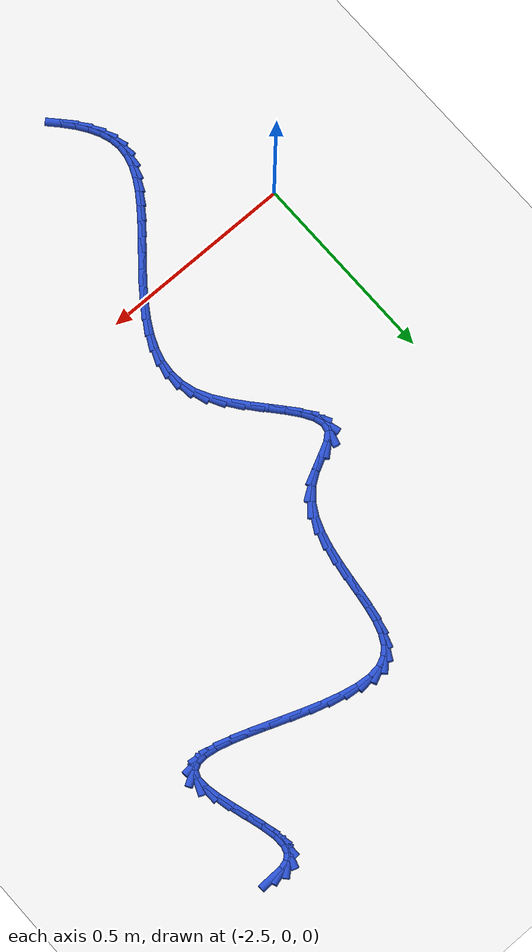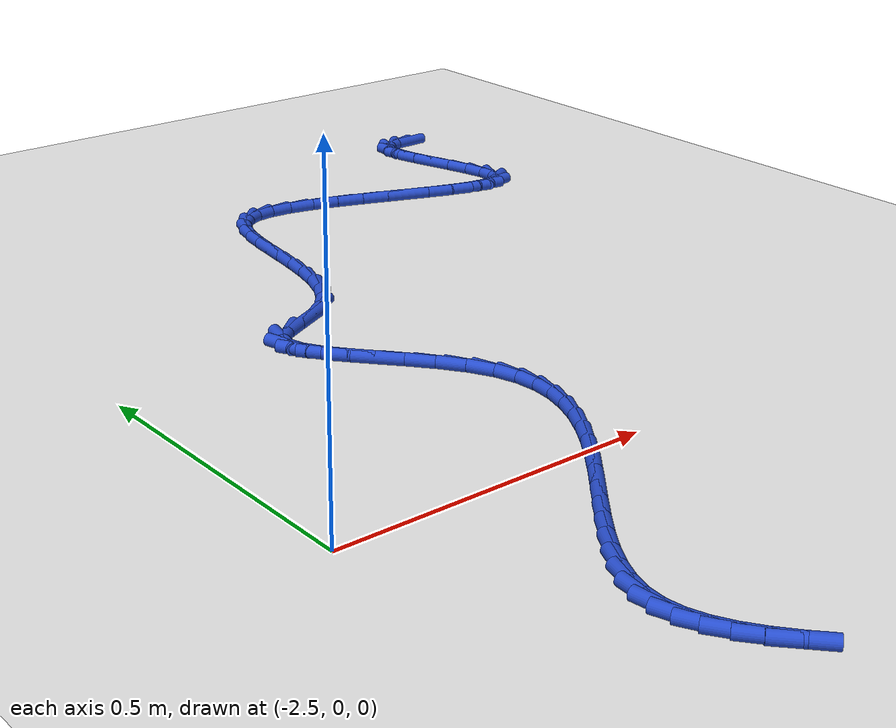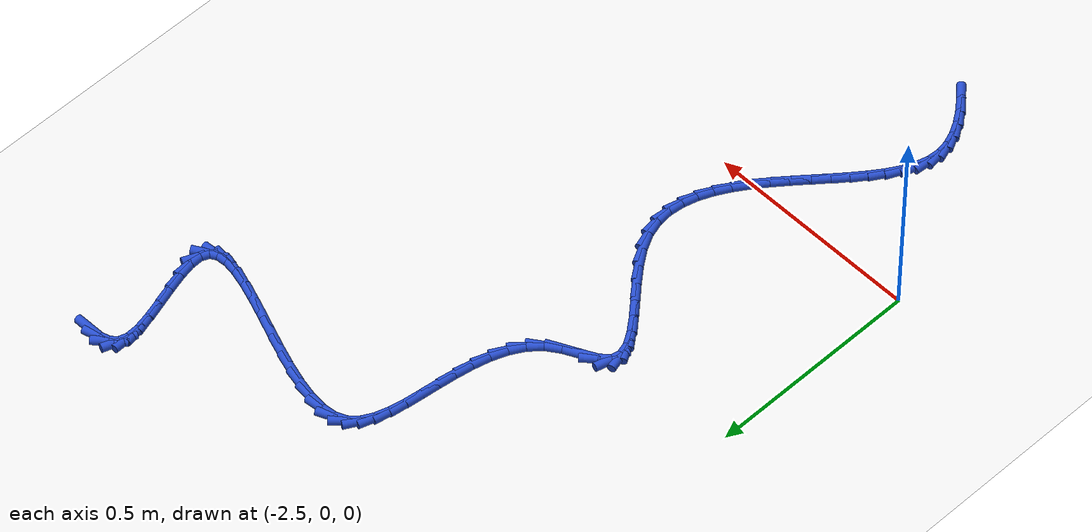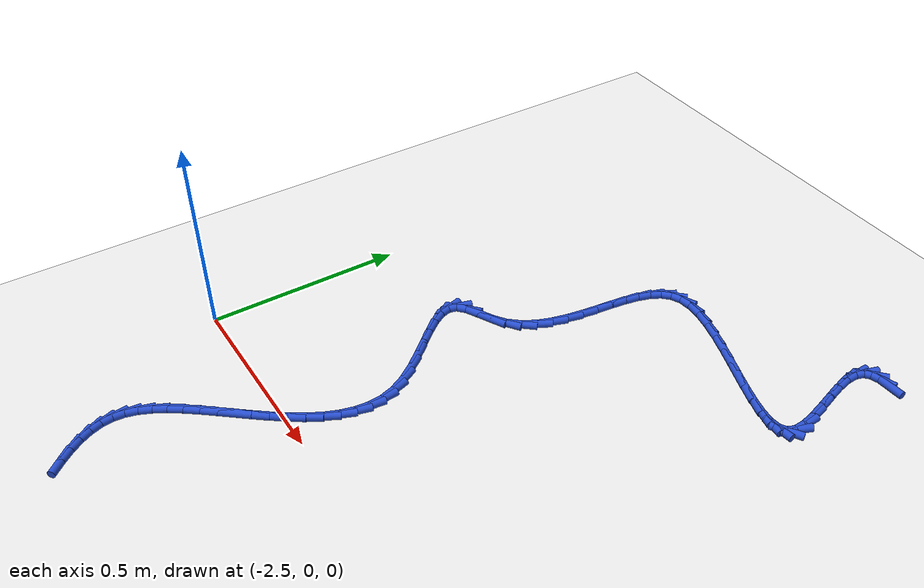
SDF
<sdf version="1.6">
 <world name="default">
  <model name="ground_plane">
   <static>1</static>
   <link name="link">
    <collision name="collision">
     <geometry><plane><normal>0 0 1</normal><size>100 100</size></plane></geometry>
     <surface><friction><ode><mu>100</mu><mu2>50</mu2></ode></friction></surface>
    </collision>
    <visual name="visual">
     <cast_shadows>0</cast_shadows>
     <geometry><plane><normal>0 0 1</normal><size>100 100</size></plane></geometry>
     <material>
      <script><uri>file://media/materials/scripts/gazebo.material</uri><name>Gazebo/WhiteGlow</name></script>
     </material>
    </visual>
   </link>
  </model>
  <model name="line">
   <link name="link_58">
    <pose>-1.4164016292035744 1.232261202519461 0.01 0 1.57 0.023516753938039918</pose>
    <collision name="collision">
     <geometry><cylinder><radius>0.01</radius><length>0.08</length></cylinder></geometry>
    </collision>
    <visual name="visual">
     <material>
      <script><name>Gazebo/Blue</name><uri>file://media/materials/scripts/gazebo.material</uri></script>
     </material>
     <geometry><cylinder><radius>0.01</radius><length>0.08</length></cylinder></geometry>
    </visual>
   </link>
   <link name="link_59">
    <pose>-1.4429171611533131 1.2316375283030356 0.01 0 1.57 0.2956675362459462</pose>
    <collision name="collision">
     <geometry><cylinder><radius>0.01</radius><length>0.08</length></cylinder></geometry>
    </collision>
    <visual name="visual">
     <material>
      <script><name>Gazebo/Blue</name><uri>file://media/materials/scripts/gazebo.material</uri></script>
     </material>
     <geometry><cylinder><radius>0.01</radius><length>0.08</length></cylinder></geometry>
    </visual>
   </link>
   <link name="link_60">
    <pose>-1.46348070411197 1.2253739648131716 0.01 0 1.57 0.7439243515767405</pose>
    <collision name="collision">
     <geometry><cylinder><radius>0.01</radius><length>0.08</length></cylinder></geometry>
    </collision>
    <visual name="visual">
     <material>
      <script><name>Gazebo/Blue</name><uri>file://media/materials/scripts/gazebo.material</uri></script>
     </material>
     <geometry><cylinder><radius>0.01</radius><length>0.08</length></cylinder></geometry>
    </visual>
   </link>
   <link name="link_61">
    <pose>-1.477401232021106 1.212562740660931 0.01 0 1.57 1.25657230305741</pose>
    <collision name="collision">
     <geometry><cylinder><radius>0.01</radius><length>0.08</length></cylinder></geometry>
    </collision>
    <visual name="visual">
     <material>
      <script><name>Gazebo/Blue</name><uri>file://media/materials/scripts/gazebo.material</uri></script>
     </material>
     <geometry><cylinder><radius>0.01</radius><length>0.08</length></cylinder></geometry>
    </visual>
   </link>
   <link name="link_62">
    <pose>-1.4839877188222823 1.1922960844573756 0.01 0 1.57 -1.5275428245213711</pose>
    <collision name="collision">
     <geometry><cylinder><radius>0.01</radius><length>0.08</length></cylinder></geometry>
    </collision>
    <visual name="visual">
     <material>
      <script><name>Gazebo/Blue</name><uri>file://media/materials/scripts/gazebo.material</uri></script>
     </material>
     <geometry><cylinder><radius>0.01</radius><length>0.08</length></cylinder></geometry>
    </visual>
   </link>
   <link name="link_63">
    <pose>-1.4827585938555519 1.1638970347296829 0.01 0 1.57 -1.3582465226467408</pose>
    <collision name="collision">
     <geometry><cylinder><radius>0.01</radius><length>0.08</length></cylinder></geometry>
    </collision>
    <visual name="visual">
     <material>
      <script><name>Gazebo/Blue</name><uri>file://media/materials/scripts/gazebo.material</uri></script>
     </material>
     <geometry><cylinder><radius>0.01</radius><length>0.08</length></cylinder></geometry>
    </visual>
   </link>
   <link name="link_64">
    <pose>-1.4751955533008918 1.1288520569584548 0.01 0 1.57 -1.2879365823768223</pose>
    <collision name="collision">
     <geometry><cylinder><radius>0.01</radius><length>0.08</length></cylinder></geometry>
    </collision>
    <visual name="visual">
     <material>
      <script><name>Gazebo/Blue</name><uri>file://media/materials/scripts/gazebo.material</uri></script>
     </material>
     <geometry><cylinder><radius>0.01</radius><length>0.08</length></cylinder></geometry>
    </visual>
   </link>
   <link name="link_65">
    <pose>-1.463853855143631 1.089830630822174 0.01 0 1.57 -1.268921595184706</pose>
    <collision name="collision">
     <geometry><cylinder><radius>0.01</radius><length>0.08</length></cylinder></geometry>
    </collision>
    <visual name="visual">
     <material>
      <script><name>Gazebo/Blue</name><uri>file://media/materials/scripts/gazebo.material</uri></script>
     </material>
     <geometry><cylinder><radius>0.01</radius><length>0.08</length></cylinder></geometry>
    </visual>
   </link>
   <link name="link_66">
    <pose>-1.4512996816436092 1.0495142740317704 0.01 0 1.57 -1.290652962087507</pose>
    <collision name="collision">
     <geometry><cylinder><radius>0.01</radius><length>0.08</length></cylinder></geometry>
    </collision>
    <visual name="visual">
     <material>
      <script><name>Gazebo/Blue</name><uri>file://media/materials/scripts/gazebo.material</uri></script>
     </material>
     <geometry><cylinder><radius>0.01</radius><length>0.08</length></cylinder></geometry>
    </visual>
   </link>
   <link name="link_67">
    <pose>-1.4400992150606642 1.0105845042981756 0.01 0 1.57 -1.364913546421629</pose>
    <collision name="collision">
     <geometry><cylinder><radius>0.01</radius><length>0.08</length></cylinder></geometry>
    </collision>
    <visual name="visual">
     <material>
      <script><name>Gazebo/Blue</name><uri>file://media/materials/scripts/gazebo.material</uri></script>
     </material>
     <geometry><cylinder><radius>0.01</radius><length>0.08</length></cylinder></geometry>
    </visual>
   </link>
   <link name="link_68">
    <pose>-1.4328186376546355 0.9757228393323184 0.01 0 1.57 -1.5425417261412266</pose>
    <collision name="collision">
     <geometry><cylinder><radius>0.01</radius><length>0.08</length></cylinder></geometry>
    </collision>
    <visual name="visual">
     <material>
      <script><name>Gazebo/Blue</name><uri>file://media/materials/scripts/gazebo.material</uri></script>
     </material>
     <geometry><cylinder><radius>0.01</radius><length>0.08</length></cylinder></geometry>
    </visual>
   </link>
   <link name="link_69">
    <pose>-1.4320241316853617 0.9476107968451305 0.01 0 1.57 1.172215041694238</pose>
    <collision name="collision">
     <geometry><cylinder><radius>0.01</radius><length>0.08</length></cylinder></geometry>
    </collision>
    <visual name="visual">
     <material>
      <script><name>Gazebo/Blue</name><uri>file://media/materials/scripts/gazebo.material</uri></script>
     </material>
     <geometry><cylinder><radius>0.01</radius><length>0.08</length></cylinder></geometry>
    </visual>
   </link>
   <link name="link_70">
    <pose>-1.4400125933685064 0.9286413212481096 0.01 0 1.57 0.5327663946959821</pose>
    <collision name="collision">
     <geometry><cylinder><radius>0.01</radius><length>0.08</length></cylinder></geometry>
    </collision>
    <visual name="visual">
     <material>
      <script><name>Gazebo/Blue</name><uri>file://media/materials/scripts/gazebo.material</uri></script>
     </material>
     <geometry><cylinder><radius>0.01</radius><length>0.08</length></cylinder></geometry>
    </visual>
   </link>
   <link name="link_71">
    <pose>-1.4567878037543889 0.918750000459337 0.01 0 1.57 0.08665400599394021</pose>
    <collision name="collision">
     <geometry><cylinder><radius>0.01</radius><length>0.08</length></cylinder></geometry>
    </collision>
    <visual name="visual">
     <material>
      <script><name>Gazebo/Blue</name><uri>file://media/materials/scripts/gazebo.material</uri></script>
     </material>
     <geometry><cylinder><radius>0.01</radius><length>0.08</length></cylinder></geometry>
    </visual>
   </link>
   <link name="link_72">
    <pose>-1.4811939728964756 0.9166297986674977 0.01 0 1.57 -0.13948151157193725</pose>
    <collision name="collision">
     <geometry><cylinder><radius>0.01</radius><length>0.08</length></cylinder></geometry>
    </collision>
    <visual name="visual">
     <material>
      <script><name>Gazebo/Blue</name><uri>file://media/materials/scripts/gazebo.material</uri></script>
     </material>
     <geometry><cylinder><radius>0.01</radius><length>0.08</length></cylinder></geometry>
    </visual>
   </link>
   <link name="link_73">
    <pose>-1.5120663408580208 0.9209640676074299 0.01 0 1.57 -0.25609961996633385</pose>
    <collision name="collision">
     <geometry><cylinder><radius>0.01</radius><length>0.08</length></cylinder></geometry>
    </collision>
    <visual name="visual">
     <material>
      <script><name>Gazebo/Blue</name><uri>file://media/materials/scripts/gazebo.material</uri></script>
     </material>
     <geometry><cylinder><radius>0.01</radius><length>0.08</length></cylinder></geometry>
    </visual>
   </link>
   <link name="link_74">
    <pose>-1.54824014770228 0.9304361590139714 0.01 0 1.57 -0.3185418497809267</pose>
    <collision name="collision">
     <geometry><cylinder><radius>0.01</radius><length>0.08</length></cylinder></geometry>
    </collision>
    <visual name="visual">
     <material>
      <script><name>Gazebo/Blue</name><uri>file://media/materials/scripts/gazebo.material</uri></script>
     </material>
     <geometry><cylinder><radius>0.01</radius><length>0.08</length></cylinder></geometry>
    </visual>
   </link>
   <link name="link_75">
    <pose>-1.5885506334925077 0.9437294246219607 0.01 0 1.57 -0.3499690201473072</pose>
    <collision name="collision">
     <geometry><cylinder><radius>0.01</radius><length>0.08</length></cylinder></geometry>
    </collision>
    <visual name="visual">
     <material>
      <script><name>Gazebo/Blue</name><uri>file://media/materials/scripts/gazebo.material</uri></script>
     </material>
     <geometry><cylinder><radius>0.01</radius><length>0.08</length></cylinder></geometry>
    </visual>
   </link>
   <link name="link_76">
    <pose>-1.6318330382919588 0.9595272161662364 0.01 0 1.57 -0.3602686088512366</pose>
    <collision name="collision">
     <geometry><cylinder><radius>0.01</radius><length>0.08</length></cylinder></geometry>
    </collision>
    <visual name="visual">
     <material>
      <script><name>Gazebo/Blue</name><uri>file://media/materials/scripts/gazebo.material</uri></script>
     </material>
     <geometry><cylinder><radius>0.01</radius><length>0.08</length></cylinder></geometry>
    </visual>
   </link>
   <link name="link_77">
    <pose>-1.6769226021638879 0.9765128853816357 0.01 0 1.57 -0.3531498080925451</pose>
    <collision name="collision">
     <geometry><cylinder><radius>0.01</radius><length>0.08</length></cylinder></geometry>
    </collision>
    <visual name="visual">
     <material>
      <script><name>Gazebo/Blue</name><uri>file://media/materials/scripts/gazebo.material</uri></script>
     </material>
     <geometry><cylinder><radius>0.01</radius><length>0.08</length></cylinder></geometry>
    </visual>
   </link>
   <link name="link_78">
    <pose>-1.7226545651715508 0.9933697840029982 0.01 0 1.57 -0.328535640530899</pose>
    <collision name="collision">
     <geometry><cylinder><radius>0.01</radius><length>0.08</length></cylinder></geometry>
    </collision>
    <visual name="visual">
     <material>
      <script><name>Gazebo/Blue</name><uri>file://media/materials/scripts/gazebo.material</uri></script>
     </material>
     <geometry><cylinder><radius>0.01</radius><length>0.08</length></cylinder></geometry>
    </visual>
   </link>
   <link name="link_79">
    <pose>-1.7678641673782005 1.0087812637651603 0.01 0 1.57 -0.28284849062185324</pose>
    <collision name="collision">
     <geometry><cylinder><radius>0.01</radius><length>0.08</length></cylinder></geometry>
    </collision>
    <visual name="visual">
     <material>
      <script><name>Gazebo/Blue</name><uri>file://media/materials/scripts/gazebo.material</uri></script>
     </material>
     <geometry><cylinder><radius>0.01</radius><length>0.08</length></cylinder></geometry>
    </visual>
   </link>
   <link name="link_80">
    <pose>-1.811386648847094 1.0214306764029621 0.01 0 1.57 -0.20769553215215708</pose>
    <collision name="collision">
     <geometry><cylinder><radius>0.01</radius><length>0.08</length></cylinder></geometry>
    </collision>
    <visual name="visual">
     <material>
      <script><name>Gazebo/Blue</name><uri>file://media/materials/scripts/gazebo.material</uri></script>
     </material>
     <geometry><cylinder><radius>0.01</radius><length>0.08</length></cylinder></geometry>
    </visual>
   </link>
   <link name="link_81">
    <pose>-1.8520572496414842 1.0300013736512403 0.01 0 1.57 -0.0864142859599788</pose>
    <collision name="collision">
     <geometry><cylinder><radius>0.01</radius><length>0.08</length></cylinder></geometry>
    </collision>
    <visual name="visual">
     <material>
      <script><name>Gazebo/Blue</name><uri>file://media/materials/scripts/gazebo.material</uri></script>
     </material>
     <geometry><cylinder><radius>0.01</radius><length>0.08</length></cylinder></geometry>
    </visual>
   </link>
   <link name="link_82">
    <pose>-1.8887112098246273 1.0331767072448341 0.01 0 1.57 0.11190393643992667</pose>
    <collision name="collision">
     <geometry><cylinder><radius>0.01</radius><length>0.08</length></cylinder></geometry>
    </collision>
    <visual name="visual">
     <material>
      <script><name>Gazebo/Blue</name><uri>file://media/materials/scripts/gazebo.material</uri></script>
     </material>
     <geometry><cylinder><radius>0.01</radius><length>0.08</length></cylinder></geometry>
    </visual>
   </link>
   <link name="link_83">
    <pose>-1.9201837694597772 1.029640028918581 0.01 0 1.57 0.4273528213781293</pose>
    <collision name="collision">
     <geometry><cylinder><radius>0.01</radius><length>0.08</length></cylinder></geometry>
    </collision>
    <visual name="visual">
     <material>
      <script><name>Gazebo/Blue</name><uri>file://media/materials/scripts/gazebo.material</uri></script>
     </material>
     <geometry><cylinder><radius>0.01</radius><length>0.08</length></cylinder></geometry>
    </visual>
   </link>
   <link name="link_84">
    <pose>-1.9453891046884195 1.018160991637224 0.01 0 1.57 0.7918896754535576</pose>
    <collision name="collision">
     <geometry><cylinder><radius>0.01</radius><length>0.08</length></cylinder></geometry>
    </collision>
    <visual name="visual">
     <material>
      <script><name>Gazebo/Blue</name><uri>file://media/materials/scripts/gazebo.material</uri></script>
     </material>
     <geometry><cylinder><radius>0.01</radius><length>0.08</length></cylinder></geometry>
    </visual>
   </link>
   <link name="link_85">
    <pose>-1.964459676141868 0.9988412052121418 0.01 0 1.57 1.0762944817345106</pose>
    <collision name="collision">
     <geometry><cylinder><radius>0.01</radius><length>0.08</length></cylinder></geometry>
    </collision>
    <visual name="visual">
     <material>
      <script><name>Gazebo/Blue</name><uri>file://media/materials/scripts/gazebo.material</uri></script>
     </material>
     <geometry><cylinder><radius>0.01</radius><length>0.08</length></cylinder></geometry>
    </visual>
   </link>
   <link name="link_86">
    <pose>-1.9784851622503854 0.9728288107137748 0.01 0 1.57 1.2609015524949827</pose>
    <collision name="collision">
     <geometry><cylinder><radius>0.01</radius><length>0.08</length></cylinder></geometry>
    </collision>
    <visual name="visual">
     <material>
      <script><name>Gazebo/Blue</name><uri>file://media/materials/scripts/gazebo.material</uri></script>
     </material>
     <geometry><cylinder><radius>0.01</radius><length>0.08</length></cylinder></geometry>
    </visual>
   </link>
   <link name="link_87">
    <pose>-1.9885810103579045 0.9413001225015418 0.01 0 1.57 1.3705093097694394</pose>
    <collision name="collision">
     <geometry><cylinder><radius>0.01</radius><length>0.08</length></cylinder></geometry>
    </collision>
    <visual name="visual">
     <material>
      <script><name>Gazebo/Blue</name><uri>file://media/materials/scripts/gazebo.material</uri></script>
     </material>
     <geometry><cylinder><radius>0.01</radius><length>0.08</length></cylinder></geometry>
    </visual>
   </link>
   <link name="link_88">
    <pose>-1.9958626678083582 0.905431454934864 0.01 0 1.57 1.4287268733179288</pose>
    <collision name="collision">
     <geometry><cylinder><radius>0.01</radius><length>0.08</length></cylinder></geometry>
    </collision>
    <visual name="visual">
     <material>
      <script><name>Gazebo/Blue</name><uri>file://media/materials/scripts/gazebo.material</uri></script>
     </material>
     <geometry><cylinder><radius>0.01</radius><length>0.08</length></cylinder></geometry>
    </visual>
   </link>
   <link name="link_89">
    <pose>-2.0014455819456782 0.86639912237316 0.01 0 1.57 1.4495111593343477</pose>
    <collision name="collision">
     <geometry><cylinder><radius>0.01</radius><length>0.08</length></cylinder></geometry>
    </collision>
    <visual name="visual">
     <material>
      <script><name>Gazebo/Blue</name><uri>file://media/materials/scripts/gazebo.material</uri></script>
     </material>
     <geometry><cylinder><radius>0.01</radius><length>0.08</length></cylinder></geometry>
    </visual>
   </link>
   <link name="link_90">
    <pose>-2.0064452001137973 0.8253794391758508 0.01 0 1.57 1.4393174169624092</pose>
    <collision name="collision">
     <geometry><cylinder><radius>0.01</radius><length>0.08</length></cylinder></geometry>
    </collision>
    <visual name="visual">
     <material>
      <script><name>Gazebo/Blue</name><uri>file://media/materials/scripts/gazebo.material</uri></script>
     </material>
     <geometry><cylinder><radius>0.01</radius><length>0.08</length></cylinder></geometry>
    </visual>
   </link>
   <link name="link_91">
    <pose>-2.0119769696566485 0.783548719702355 0.01 0 1.57 1.3993549813798343</pose>
    <collision name="collision">
     <geometry><cylinder><radius>0.01</radius><length>0.08</length></cylinder></geometry>
    </collision>
    <visual name="visual">
     <material>
      <script><name>Gazebo/Blue</name><uri>file://media/materials/scripts/gazebo.material</uri></script>
     </material>
     <geometry><cylinder><radius>0.01</radius><length>0.08</length></cylinder></geometry>
    </visual>
   </link>
   <link name="link_92">
    <pose>-2.019156337918164 0.7420832783120935 0.01 0 1.57 1.3267266096665244</pose>
    <collision name="collision">
     <geometry><cylinder><radius>0.01</radius><length>0.08</length></cylinder></geometry>
    </collision>
    <visual name="visual">
     <material>
      <script><name>Gazebo/Blue</name><uri>file://media/materials/scripts/gazebo.material</uri></script>
     </material>
     <geometry><cylinder><radius>0.01</radius><length>0.08</length></cylinder></geometry>
    </visual>
   </link>
   <link name="link_93">
    <pose>-2.029098752242276 0.7021594293644854 0.01 0 1.57 1.2151236495765252</pose>
    <collision name="collision">
     <geometry><cylinder><radius>0.01</radius><length>0.08</length></cylinder></geometry>
    </collision>
    <visual name="visual">
     <material>
      <script><name>Gazebo/Blue</name><uri>file://media/materials/scripts/gazebo.material</uri></script>
     </material>
     <geometry><cylinder><radius>0.01</radius><length>0.08</length></cylinder></geometry>
    </visual>
   </link>
   <link name="link_94">
    <pose>-2.0429196599729176 0.6649534872189514 0.01 0 1.57 1.0566525614363744</pose>
    <collision name="collision">
     <geometry><cylinder><radius>0.01</radius><length>0.08</length></cylinder></geometry>
    </collision>
    <visual name="visual">
     <material>
      <script><name>Gazebo/Blue</name><uri>file://media/materials/scripts/gazebo.material</uri></script>
     </material>
     <geometry><cylinder><radius>0.01</radius><length>0.08</length></cylinder></geometry>
    </visual>
   </link>
   <link name="link_95">
    <pose>-2.061734508454021 0.6316417662349105 0.01 0 1.57 0.8477066176066248</pose>
    <collision name="collision">
     <geometry><cylinder><radius>0.01</radius><length>0.08</length></cylinder></geometry>
    </collision>
    <visual name="visual">
     <material>
      <script><name>Gazebo/Blue</name><uri>file://media/materials/scripts/gazebo.material</uri></script>
     </material>
     <geometry><cylinder><radius>0.01</radius><length>0.08</length></cylinder></geometry>
    </visual>
   </link>
   <link name="link_96">
    <pose>-2.0866587450295184 0.6034005807717832 0.01 0 1.57 0.6070037038667645</pose>
    <collision name="collision">
     <geometry><cylinder><radius>0.01</radius><length>0.08</length></cylinder></geometry>
    </collision>
    <visual name="visual">
     <material>
      <script><name>Gazebo/Blue</name><uri>file://media/materials/scripts/gazebo.material</uri></script>
     </material>
     <geometry><cylinder><radius>0.01</radius><length>0.08</length></cylinder></geometry>
    </visual>
   </link>
   <link name="link_97">
    <pose>-2.1185378550118767 0.5812615520140841 0.01 0 1.57 0.45827465357655267</pose>
    <collision name="collision">
     <geometry><cylinder><radius>0.01</radius><length>0.08</length></cylinder></geometry>
    </collision>
    <visual name="visual">
     <material>
      <script><name>Gazebo/Blue</name><uri>file://media/materials/scripts/gazebo.material</uri></script>
     </material>
     <geometry><cylinder><radius>0.01</radius><length>0.08</length></cylinder></geometry>
    </visual>
   </link>
   <link name="link_98">
    <pose>-2.1537785802313727 0.5638772410854116 0.01 0 1.57 0.4696632478587327</pose>
    <collision name="collision">
     <geometry><cylinder><radius>0.01</radius><length>0.08</length></cylinder></geometry>
    </collision>
    <visual name="visual">
     <material>
      <script><name>Gazebo/Blue</name><uri>file://media/materials/scripts/gazebo.material</uri></script>
     </material>
     <geometry><cylinder><radius>0.01</radius><length>0.08</length></cylinder></geometry>
    </visual>
   </link>
   <link name="link_99">
    <pose>-2.185154224657156 0.5479527735492953 0.01 0 1.57 0.7214552080843832</pose>
    <collision name="collision">
     <geometry><cylinder><radius>0.01</radius><length>0.08</length></cylinder></geometry>
    </collision>
    <visual name="visual">
     <material>
      <script><name>Gazebo/Blue</name><uri>file://media/materials/scripts/gazebo.material</uri></script>
     </material>
     <geometry><cylinder><radius>0.01</radius><length>0.08</length></cylinder></geometry>
    </visual>
   </link>
   <link name="link_100">
    <pose>-2.2053852350090555 0.5301566499383612 0.01 0 1.57 1.3245847581904435</pose>
    <collision name="collision">
     <geometry><cylinder><radius>0.01</radius><length>0.08</length></cylinder></geometry>
    </collision>
    <visual name="visual">
     <material>
      <script><name>Gazebo/Blue</name><uri>file://media/materials/scripts/gazebo.material</uri></script>
     </material>
     <geometry><cylinder><radius>0.01</radius><length>0.08</length></cylinder></geometry>
    </visual>
   </link>
   <link name="link_101">
    <pose>-2.2108168311016705 0.508543549907538 0.01 0 1.57 -1.2928852691774555</pose>
    <collision name="collision">
     <geometry><cylinder><radius>0.01</radius><length>0.08</length></cylinder></geometry>
    </collision>
    <visual name="visual">
     <material>
      <script><name>Gazebo/Blue</name><uri>file://media/materials/scripts/gazebo.material</uri></script>
     </material>
     <geometry><cylinder><radius>0.01</radius><length>0.08</length></cylinder></geometry>
    </visual>
   </link>
   <link name="link_102">
    <pose>-2.2036451375839623 0.48340564547773923 0.01 0 1.57 -1.0265484586505678</pose>
    <collision name="collision">
     <geometry><cylinder><radius>0.01</radius><length>0.08</length></cylinder></geometry>
    </collision>
    <visual name="visual">
     <material>
      <script><name>Gazebo/Blue</name><uri>file://media/materials/scripts/gazebo.material</uri></script>
     </material>
     <geometry><cylinder><radius>0.01</radius><length>0.08</length></cylinder></geometry>
    </visual>
   </link>
   <link name="link_103">
    <pose>-2.186597773864435 0.45523836192740275 0.01 0 1.57 -0.9033583541171623</pose>
    <collision name="collision">
     <geometry><cylinder><radius>0.01</radius><length>0.08</length></cylinder></geometry>
    </collision>
    <visual name="visual">
     <material>
      <script><name>Gazebo/Blue</name><uri>file://media/materials/scripts/gazebo.material</uri></script>
     </material>
     <geometry><cylinder><radius>0.01</radius><length>0.08</length></cylinder></geometry>
    </visual>
   </link>
   <link name="link_104">
    <pose>-2.162402359351595 0.42453712453496545 0.01 0 1.57 -0.8525106341294274</pose>
    <collision name="collision">
     <geometry><cylinder><radius>0.01</radius><length>0.08</length></cylinder></geometry>
    </collision>
    <visual name="visual">
     <material>
      <script><name>Gazebo/Blue</name><uri>file://media/materials/scripts/gazebo.material</uri></script>
     </material>
     <geometry><cylinder><radius>0.01</radius><length>0.08</length></cylinder></geometry>
    </visual>
   </link>
   <link name="link_105">
    <pose>-2.133786513453947 0.3917973585788655 0.01 0 1.57 -0.8468490656252783</pose>
    <collision name="collision">
     <geometry><cylinder><radius>0.01</radius><length>0.08</length></cylinder></geometry>
    </collision>
    <visual name="visual">
     <material>
      <script><name>Gazebo/Blue</name><uri>file://media/materials/scripts/gazebo.material</uri></script>
     </material>
     <geometry><cylinder><radius>0.01</radius><length>0.08</length></cylinder></geometry>
    </visual>
   </link>
   <link name="link_106">
    <pose>-2.1034778555799987 0.35751448933753943 0.01 0 1.57 -0.8788754742748339</pose>
    <collision name="collision">
     <geometry><cylinder><radius>0.01</radius><length>0.08</length></cylinder></geometry>
    </collision>
    <visual name="visual">
     <material>
      <script><name>Gazebo/Blue</name><uri>file://media/materials/scripts/gazebo.material</uri></script>
     </material>
     <geometry><cylinder><radius>0.01</radius><length>0.08</length></cylinder></geometry>
    </visual>
   </link>
   <link name="link_107">
    <pose>-2.0742040051382555 0.322183942089426 0.01 0 1.57 -0.9527489862276215</pose>
    <collision name="collision">
     <geometry><cylinder><radius>0.01</radius><length>0.08</length></cylinder></geometry>
    </collision>
    <visual name="visual">
     <material>
      <script><name>Gazebo/Blue</name><uri>file://media/materials/scripts/gazebo.material</uri></script>
     </material>
     <geometry><cylinder><radius>0.01</radius><length>0.08</length></cylinder></geometry>
    </visual>
   </link>
   <link name="link_108">
    <pose>-2.048692581537223 0.2863011421129615 0.01 0 1.57 -1.083887801644595</pose>
    <collision name="collision">
     <geometry><cylinder><radius>0.01</radius><length>0.08</length></cylinder></geometry>
    </collision>
    <visual name="visual">
     <material>
      <script><name>Gazebo/Blue</name><uri>file://media/materials/scripts/gazebo.material</uri></script>
     </material>
     <geometry><cylinder><radius>0.01</radius><length>0.08</length></cylinder></geometry>
    </visual>
   </link>
   <link name="link_109">
    <pose>-2.0296648359804603 0.2503606526838791 0.01 0 1.57 -1.2745319869087415</pose>
    <collision name="collision">
     <geometry><cylinder><radius>0.01</radius><length>0.08</length></cylinder></geometry>
    </collision>
    <visual name="visual">
     <material>
      <script><name>Gazebo/Blue</name><uri>file://media/materials/scripts/gazebo.material</uri></script>
     </material>
     <geometry><cylinder><radius>0.01</radius><length>0.08</length></cylinder></geometry>
    </visual>
   </link>
   <link name="link_110">
    <pose>-2.0187837063457783 0.21471378337336755 0.01 0 1.57 -1.4774960237543262</pose>
    <collision name="collision">
     <geometry><cylinder><radius>0.01</radius><length>0.08</length></cylinder></geometry>
    </collision>
    <visual name="visual">
     <material>
      <script><name>Gazebo/Blue</name><uri>file://media/materials/scripts/gazebo.material</uri></script>
     </material>
     <geometry><cylinder><radius>0.01</radius><length>0.08</length></cylinder></geometry>
    </visual>
   </link>
   <link name="link_111">
    <pose>-2.0154802367404 0.17940973374133612 0.01 0 1.57 1.4731878255101112</pose>
    <collision name="collision">
     <geometry><cylinder><radius>0.01</radius><length>0.08</length></cylinder></geometry>
    </collision>
    <visual name="visual">
     <material>
      <script><name>Gazebo/Blue</name><uri>file://media/materials/scripts/gazebo.material</uri></script>
     </material>
     <geometry><cylinder><radius>0.01</radius><length>0.08</length></cylinder></geometry>
    </visual>
   </link>
   <link name="link_112">
    <pose>-2.0189025611540488 0.14445940852384567 0.01 0 1.57 1.3082136128419886</pose>
    <collision name="collision">
     <geometry><cylinder><radius>0.01</radius><length>0.08</length></cylinder></geometry>
    </collision>
    <visual name="visual">
     <material>
      <script><name>Gazebo/Blue</name><uri>file://media/materials/scripts/gazebo.material</uri></script>
     </material>
     <geometry><cylinder><radius>0.01</radius><length>0.08</length></cylinder></geometry>
    </visual>
   </link>
   <link name="link_113">
    <pose>-2.028198813576446 0.10987371245695737 0.01 0 1.57 1.1744102269336048</pose>
    <collision name="collision">
     <geometry><cylinder><radius>0.01</radius><length>0.08</length></cylinder></geometry>
    </collision>
    <visual name="visual">
     <material>
      <script><name>Gazebo/Blue</name><uri>file://media/materials/scripts/gazebo.material</uri></script>
     </material>
     <geometry><cylinder><radius>0.01</radius><length>0.08</length></cylinder></geometry>
    </visual>
   </link>
   <link name="link_114">
    <pose>-2.042517127997316 0.07566355027673158 0.01 0 1.57 1.0705566855202437</pose>
    <collision name="collision">
     <geometry><cylinder><radius>0.01</radius><length>0.08</length></cylinder></geometry>
    </collision>
    <visual name="visual">
     <material>
      <script><name>Gazebo/Blue</name><uri>file://media/materials/scripts/gazebo.material</uri></script>
     </material>
     <geometry><cylinder><radius>0.01</radius><length>0.08</length></cylinder></geometry>
    </visual>
   </link>
   <link name="link_115">
    <pose>-2.061005638406379 0.041839826719231255 0.01 0 1.57 0.9927469087306787</pose>
    <collision name="collision">
     <geometry><cylinder><radius>0.01</radius><length>0.08</length></cylinder></geometry>
    </collision>
    <visual name="visual">
     <material>
      <script><name>Gazebo/Blue</name><uri>file://media/materials/scripts/gazebo.material</uri></script>
     </material>
     <geometry><cylinder><radius>0.01</radius><length>0.08</length></cylinder></geometry>
    </visual>
   </link>
   <link name="link_116">
    <pose>-2.0828124787933593 0.008413446520516702 0.01 0 1.57 0.9368666740735119</pose>
    <collision name="collision">
     <geometry><cylinder><radius>0.01</radius><length>0.08</length></cylinder></geometry>
    </collision>
    <visual name="visual">
     <material>
      <script><name>Gazebo/Blue</name><uri>file://media/materials/scripts/gazebo.material</uri></script>
     </material>
     <geometry><cylinder><radius>0.01</radius><length>0.08</length></cylinder></geometry>
    </visual>
   </link>
   <link name="link_117">
    <pose>-2.107085783147978 -0.02460468558335082 0.01 0 1.57 0.8996435067464122</pose>
    <collision name="collision">
     <geometry><cylinder><radius>0.01</radius><length>0.08</length></cylinder></geometry>
    </collision>
    <visual name="visual">
     <material>
      <script><name>Gazebo/Blue</name><uri>file://media/materials/scripts/gazebo.material</uri></script>
     </material>
     <geometry><cylinder><radius>0.01</radius><length>0.08</length></cylinder></geometry>
    </visual>
   </link>
   <link name="link_118">
    <pose>-2.1329736854599597 -0.05720366485631087 0.01 0 1.57 0.8789415822722119</pose>
    <collision name="collision">
     <geometry><cylinder><radius>0.01</radius><length>0.08</length></cylinder></geometry>
    </collision>
    <visual name="visual">
     <material>
      <script><name>Gazebo/Blue</name><uri>file://media/materials/scripts/gazebo.material</uri></script>
     </material>
     <geometry><cylinder><radius>0.01</radius><length>0.08</length></cylinder></geometry>
    </visual>
   </link>
   <link name="link_119">
    <pose>-2.1596243197190246 -0.08937258656230068 0.01 0 1.57 0.8738016806990974</pose>
    <collision name="collision">
     <geometry><cylinder><radius>0.01</radius><length>0.08</length></cylinder></geometry>
    </collision>
    <visual name="visual">
     <material>
      <script><name>Gazebo/Blue</name><uri>file://media/materials/scripts/gazebo.material</uri></script>
     </material>
     <geometry><cylinder><radius>0.01</radius><length>0.08</length></cylinder></geometry>
    </visual>
   </link>
   <link name="link_120">
    <pose>-2.186185819914896 -0.12110054596525978 0.01 0 1.57 0.8844739560294677</pose>
    <collision name="collision">
     <geometry><cylinder><radius>0.01</radius><length>0.08</length></cylinder></geometry>
    </collision>
    <visual name="visual">
     <material>
      <script><name>Gazebo/Blue</name><uri>file://media/materials/scripts/gazebo.material</uri></script>
     </material>
     <geometry><cylinder><radius>0.01</radius><length>0.08</length></cylinder></geometry>
    </visual>
   </link>
   <link name="link_121">
    <pose>-2.211806320037297 -0.15237663832912698 0.01 0 1.57 0.9125554483718167</pose>
    <collision name="collision">
     <geometry><cylinder><radius>0.01</radius><length>0.08</length></cylinder></geometry>
    </collision>
    <visual name="visual">
     <material>
      <script><name>Gazebo/Blue</name><uri>file://media/materials/scripts/gazebo.material</uri></script>
     </material>
     <geometry><cylinder><radius>0.01</radius><length>0.08</length></cylinder></geometry>
    </visual>
   </link>
   <link name="link_122">
    <pose>-2.23563395407595 -0.1831899589178418 0.01 0 1.57 0.9612847016899321</pose>
    <collision name="collision">
     <geometry><cylinder><radius>0.01</radius><length>0.08</length></cylinder></geometry>
    </collision>
    <visual name="visual">
     <material>
      <script><name>Gazebo/Blue</name><uri>file://media/materials/scripts/gazebo.material</uri></script>
     </material>
     <geometry><cylinder><radius>0.01</radius><length>0.08</length></cylinder></geometry>
    </visual>
   </link>
   <link name="link_123">
    <pose>-2.256816856020576 -0.21352960299534152 0.01 0 1.57 1.035979721548068</pose>
    <collision name="collision">
     <geometry><cylinder><radius>0.01</radius><length>0.08</length></cylinder></geometry>
    </collision>
    <visual name="visual">
     <material>
      <script><name>Gazebo/Blue</name><uri>file://media/materials/scripts/gazebo.material</uri></script>
     </material>
     <geometry><cylinder><radius>0.01</radius><length>0.08</length></cylinder></geometry>
    </visual>
   </link>
   <link name="link_124">
    <pose>-2.274503159860899 -0.24338466582556562 0.01 0 1.57 1.1443783765741158</pose>
    <collision name="collision">
     <geometry><cylinder><radius>0.01</radius><length>0.08</length></cylinder></geometry>
    </collision>
    <visual name="visual">
     <material>
      <script><name>Gazebo/Blue</name><uri>file://media/materials/scripts/gazebo.material</uri></script>
     </material>
     <geometry><cylinder><radius>0.01</radius><length>0.08</length></cylinder></geometry>
    </visual>
   </link>
   <link name="link_125">
    <pose>-2.2878409995866407 -0.27274424267245295 0.01 0 1.57 1.2959047378724173</pose>
    <collision name="collision">
     <geometry><cylinder><radius>0.01</radius><length>0.08</length></cylinder></geometry>
    </collision>
    <visual name="visual">
     <material>
      <script><name>Gazebo/Blue</name><uri>file://media/materials/scripts/gazebo.material</uri></script>
     </material>
     <geometry><cylinder><radius>0.01</radius><length>0.08</length></cylinder></geometry>
    </visual>
   </link>
   <link name="link_126">
    <pose>-2.295978509187524 -0.301597428799943 0.01 0 1.57 1.4963648843658073</pose>
    <collision name="collision">
     <geometry><cylinder><radius>0.01</radius><length>0.08</length></cylinder></geometry>
    </collision>
    <visual name="visual">
     <material>
      <script><name>Gazebo/Blue</name><uri>file://media/materials/scripts/gazebo.material</uri></script>
     </material>
     <geometry><cylinder><radius>0.01</radius><length>0.08</length></cylinder></geometry>
    </visual>
   </link>
   <link name="link_127">
    <pose>-2.2980916500760302 -0.329935414507357 0.01 0 1.57 -1.4269586001579249</pose>
    <collision name="collision">
     <geometry><cylinder><radius>0.01</radius><length>0.08</length></cylinder></geometry>
    </collision>
    <visual name="visual">
     <material>
      <script><name>Gazebo/Blue</name><uri>file://media/materials/scripts/gazebo.material</uri></script>
     </material>
     <geometry><cylinder><radius>0.01</radius><length>0.08</length></cylinder></geometry>
    </visual>
   </link>
   <link name="link_128">
    <pose>-2.2940555067553228 -0.3578020247783529 0.01 0 1.57 -1.235621783529934</pose>
    <collision name="collision">
     <geometry><cylinder><radius>0.01</radius><length>0.08</length></cylinder></geometry>
    </collision>
    <visual name="visual">
     <material>
      <script><name>Gazebo/Blue</name><uri>file://media/materials/scripts/gazebo.material</uri></script>
     </material>
     <geometry><cylinder><radius>0.01</radius><length>0.08</length></cylinder></geometry>
    </visual>
   </link>
   <link name="link_129">
    <pose>-2.2844787824763286 -0.3852963163457954 0.01 0 1.57 -1.082138446221783</pose>
    <collision name="collision">
     <geometry><cylinder><radius>0.01</radius><length>0.08</length></cylinder></geometry>
    </collision>
    <visual name="visual">
     <material>
      <script><name>Gazebo/Blue</name><uri>file://media/materials/scripts/gazebo.material</uri></script>
     </material>
     <geometry><cylinder><radius>0.01</radius><length>0.08</length></cylinder></geometry>
    </visual>
   </link>
   <link name="link_130">
    <pose>-2.270004912061336 -0.41251996076863634 0.01 0 1.57 -0.965315971670886</pose>
    <collision name="collision">
     <geometry><cylinder><radius>0.01</radius><length>0.08</length></cylinder></geometry>
    </collision>
    <visual name="visual">
     <material>
      <script><name>Gazebo/Blue</name><uri>file://media/materials/scripts/gazebo.material</uri></script>
     </material>
     <geometry><cylinder><radius>0.01</radius><length>0.08</length></cylinder></geometry>
    </visual>
   </link>
   <link name="link_131">
    <pose>-2.251277330332632 -0.43957462960582755 0.01 0 1.57 -0.8793827090914582</pose>
    <collision name="collision">
     <geometry><cylinder><radius>0.01</radius><length>0.08</length></cylinder></geometry>
    </collision>
    <visual name="visual">
     <material>
      <script><name>Gazebo/Blue</name><uri>file://media/materials/scripts/gazebo.material</uri></script>
     </material>
     <geometry><cylinder><radius>0.01</radius><length>0.08</length></cylinder></geometry>
    </visual>
   </link>
   <link name="link_132">
    <pose>-2.2289394721125038 -0.4665619944163188 0.01 0 1.57 -0.8182002579930328</pose>
    <collision name="collision">
     <geometry><cylinder><radius>0.01</radius><length>0.08</length></cylinder></geometry>
    </collision>
    <visual name="visual">
     <material>
      <script><name>Gazebo/Blue</name><uri>file://media/materials/scripts/gazebo.material</uri></script>
     </material>
     <geometry><cylinder><radius>0.01</radius><length>0.08</length></cylinder></geometry>
    </visual>
   </link>
  </model>
 </world>
</sdf>
